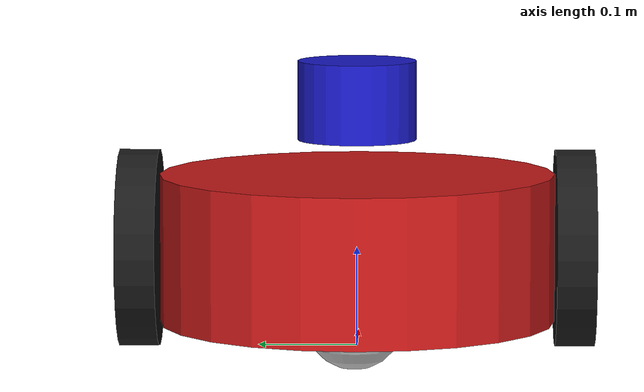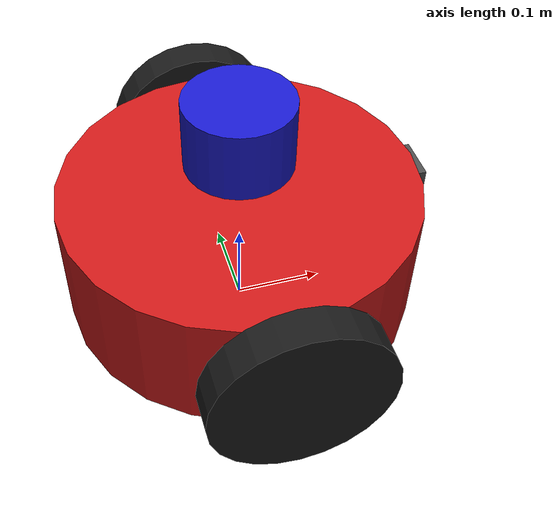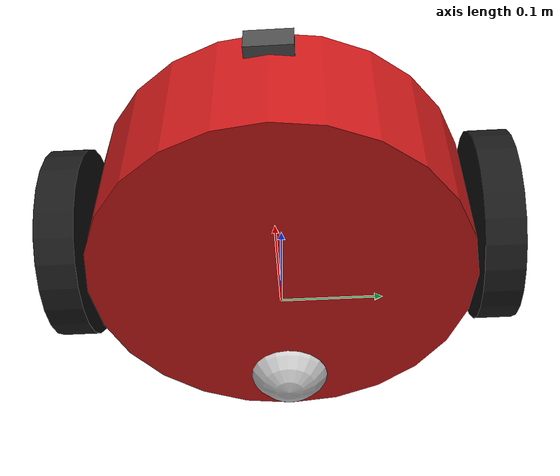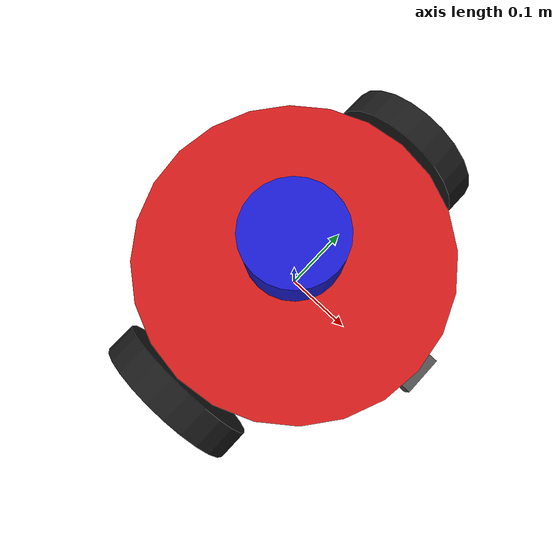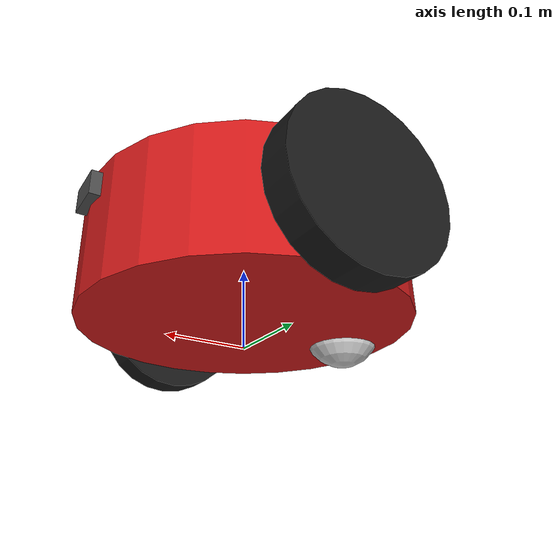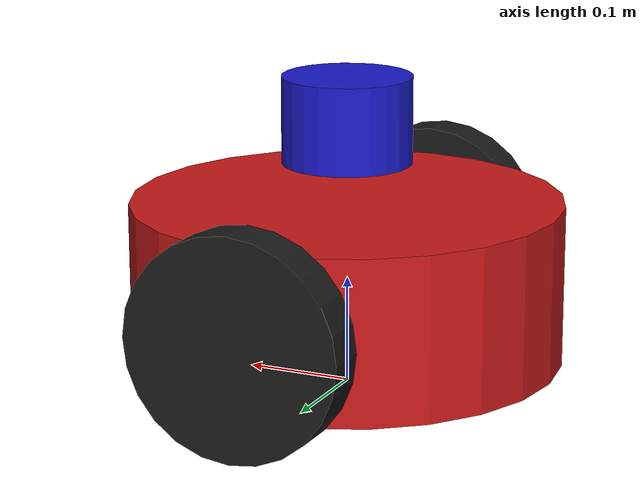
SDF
<?xml version="1.0" ?>
<sdf version="1.8">
  <model name="explorer_bot">
    <!-- Chassis -->
    <link name="chassis">
      <pose>0 0 0.1 0 0 0</pose>
      <inertial>
        <mass>5.0</mass>
        <inertia>
          <ixx>0.05</ixx>
          <iyy>0.05</iyy>
          <izz>0.05</izz>
        </inertia>
      </inertial>
      <visual name="visual">
        <geometry>
          <cylinder>
            <radius>0.2</radius>
            <length>0.15</length>
          </cylinder>
        </geometry>
        <material>
          <ambient>0.8 0.1 0.1 1</ambient>
          <diffuse>0.8 0.1 0.1 1</diffuse>
        </material>
      </visual>
      <collision name="collision">
        <geometry>
          <cylinder>
            <radius>0.2</radius>
            <length>0.15</length>
          </cylinder>
        </geometry>
      </collision>

      <!-- IMU Sensor -->
      <sensor name="imu_sensor" type="imu">
        <pose>0 0 0 0 0 0</pose>
        <always_on>1</always_on>
        <update_rate>100</update_rate>
        <visualize>true</visualize>
        <topic>imu</topic>
      </sensor>
    </link>

    <!-- Left Wheel -->
    <link name="left_wheel">
      <pose>0 0.22 0.1 -1.5707 0 0</pose>
      <inertial>
        <mass>0.5</mass>
        <inertia>
          <ixx>0.001</ixx>
          <iyy>0.001</iyy>
          <izz>0.001</izz>
        </inertia>
      </inertial>
      <visual name="visual">
        <geometry>
          <cylinder>
            <radius>0.1</radius>
            <length>0.04</length>
          </cylinder>
        </geometry>
        <material>
          <ambient>0.1 0.1 0.1 1</ambient>
          <diffuse>0.1 0.1 0.1 1</diffuse>
        </material>
      </visual>
      <collision name="collision">
        <geometry>
          <cylinder>
            <radius>0.1</radius>
            <length>0.04</length>
          </cylinder>
        </geometry>
        <surface>
          <friction>
            <ode>
              <mu>1.0</mu>
              <mu2>1.0</mu2>
            </ode>
          </friction>
        </surface>
      </collision>
    </link>

    <!-- Right Wheel -->
    <link name="right_wheel">
      <pose>0 -0.22 0.1 -1.5707 0 0</pose>
      <inertial>
        <mass>0.5</mass>
        <inertia>
          <ixx>0.001</ixx>
          <iyy>0.001</iyy>
          <izz>0.001</izz>
        </inertia>
      </inertial>
      <visual name="visual">
        <geometry>
          <cylinder>
            <radius>0.1</radius>
            <length>0.04</length>
          </cylinder>
        </geometry>
        <material>
          <ambient>0.1 0.1 0.1 1</ambient>
          <diffuse>0.1 0.1 0.1 1</diffuse>
        </material>
      </visual>
      <collision name="collision">
        <geometry>
          <cylinder>
            <radius>0.1</radius>
            <length>0.04</length>
          </cylinder>
        </geometry>
        <surface>
          <friction>
            <ode>
              <mu>1.0</mu>
              <mu2>1.0</mu2>
            </ode>
          </friction>
        </surface>
      </collision>
    </link>

    <!-- Caster Wheel (Passive Sphere) -->
    <link name="caster">
      <pose>-0.15 0 0.05 0 0 0</pose>
      <inertial>
        <mass>0.2</mass>
        <inertia>
          <ixx>0.0001</ixx>
          <iyy>0.0001</iyy>
          <izz>0.0001</izz>
        </inertia>
      </inertial>
      <visual name="visual">
        <geometry>
          <sphere>
            <radius>0.05</radius>
          </sphere>
        </geometry>
        <material>
          <ambient>0.8 0.8 0.8 1</ambient>
          <diffuse>0.8 0.8 0.8 1</diffuse>
        </material>
      </visual>
      <collision name="collision">
        <geometry>
          <sphere>
            <radius>0.05</radius>
          </sphere>
        </geometry>
        <surface>
          <friction>
            <ode>
              <mu>0.0</mu>
              <mu2>0.0</mu2>
              <slip1>1.0</slip1>
              <slip2>1.0</slip2>
            </ode>
          </friction>
        </surface>
      </collision>
    </link>

    <!-- Lidars and cameras -->
    <link name="lidar_link">
      <pose>0 0 0.25 0 0 0</pose>
      <inertial>
        <mass>0.1</mass>
        <inertia>
          <ixx>0.0001</ixx>
          <iyy>0.0001</iyy>
          <izz>0.0001</izz>
        </inertia>
      </inertial>
      <visual name="visual">
        <geometry>
          <cylinder>
            <radius>0.06</radius>
            <length>0.08</length>
          </cylinder>
        </geometry>
        <material>
          <ambient>0.1 0.1 0.8 1</ambient>
          <diffuse>0.1 0.1 0.8 1</diffuse>
        </material>
      </visual>
      <collision name="collision">
        <geometry>
          <cylinder>
            <radius>0.06</radius>
            <length>0.08</length>
          </cylinder>
        </geometry>
      </collision>
      <sensor name='gpu_lidar' type='gpu_lidar'>
        <pose>0 0 0 0 0 0</pose>
        <topic>scan</topic>
        <update_rate>10</update_rate>
        <ray>
          <scan>
            <horizontal>
              <samples>1440</samples>
              <resolution>1</resolution>
              <min_angle>-3.14159</min_angle>
              <max_angle>3.14159</max_angle>
            </horizontal>
          </scan>
          <range>
            <min>0.1</min>
            <max>12.0</max>
            <resolution>0.01</resolution>
          </range>
        </ray>
        <always_on>1</always_on>
        <visualize>true</visualize>
      </sensor>
    </link>

    <link name="camera_link">
      <pose>0.2 0 0.15 0 0 0</pose>
      <inertial>
        <mass>0.05</mass>
        <inertia>
          <ixx>0.0001</ixx>
          <iyy>0.0001</iyy>
          <izz>0.0001</izz>
        </inertia>
      </inertial>
      <visual name="visual">
        <geometry>
          <box>
            <size>0.02 0.05 0.03</size>
          </box>
        </geometry>
        <material>
          <ambient>0.3 0.3 0.3 1</ambient>
          <diffuse>0.3 0.3 0.3 1</diffuse>
        </material>
      </visual>
      <sensor name="camera" type="camera">
        <camera>
          <horizontal_fov>1.047</horizontal_fov>
          <image>
            <width>640</width>
            <height>480</height>
          </image>
          <clip>
            <near>0.1</near>
            <far>100</far>
          </clip>
        </camera>
        <always_on>1</always_on>
        <update_rate>30</update_rate>
        <visualize>true</visualize>
        <topic>camera/image_raw</topic>
      </sensor>
    </link>

    <!-- Joints -->
    <joint name="left_wheel_joint" type="revolute">
      <parent>chassis</parent>
      <child>left_wheel</child>
      <axis>
        <xyz>0 0 1</xyz>
        <limit>
          <lower>-1e+16</lower>
          <upper>1e+16</upper>
        </limit>
      </axis>
    </joint>

    <joint name="right_wheel_joint" type="revolute">
      <parent>chassis</parent>
      <child>right_wheel</child>
      <axis>
        <xyz>0 0 1</xyz>
        <limit>
          <lower>-1e+16</lower>
          <upper>1e+16</upper>
        </limit>
      </axis>
    </joint>

    <joint name="caster_joint" type="ball">
      <parent>chassis</parent>
      <child>caster</child>
    </joint>

    <joint name="lidar_joint" type="fixed">
      <parent>chassis</parent>
      <child>lidar_link</child>
    </joint>

    <joint name="camera_joint" type="fixed">
      <parent>chassis</parent>
      <child>camera_link</child>
    </joint>

    <!-- Diff Drive Plugin -->
    <plugin
      filename="gz-sim-diff-drive-system"
      name="gz::sim::systems::DiffDrive">
      <left_joint>left_wheel_joint</left_joint>
      <right_joint>right_wheel_joint</right_joint>
      <wheel_separation>0.44</wheel_separation>
      <wheel_radius>0.1</wheel_radius>
      <odom_publish_frequency>50</odom_publish_frequency>
      <topic>cmd_vel</topic>
      <odom_topic>odom</odom_topic>
      <tf_topic>tf</tf_topic>
      <frame_id>odom</frame_id>
      <child_frame_id>base_footprint</child_frame_id>
    </plugin>

    <!-- Joint State Publisher -->
    <plugin
      filename="gz-sim-joint-state-publisher-system"
      name="gz::sim::systems::JointStatePublisher">
    </plugin>

    <!-- Publishes link poses on gz topic /model/explorer_bot/pose -->
    <plugin
      filename="gz-sim-pose-publisher-system"
      name="gz::sim::systems::PosePublisher">
      <publish_link_pose>true</publish_link_pose>
      <publish_sensor_pose>true</publish_sensor_pose>
      <publish_collision_pose>false</publish_collision_pose>
      <publish_visual_pose>false</publish_visual_pose>
      <publish_nested_model_pose>false</publish_nested_model_pose>
      <use_pose_vector_msg>true</use_pose_vector_msg>
      <static_publisher>true</static_publisher>
      <static_update_frequency>1</static_update_frequency>
    </plugin>

  </model>
</sdf>
